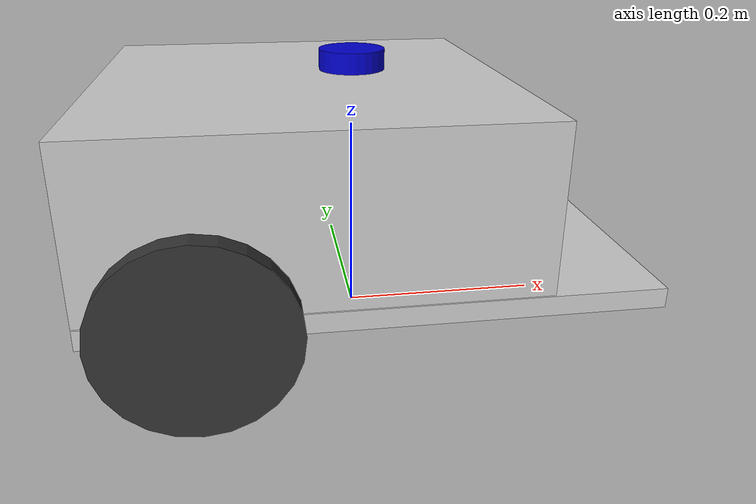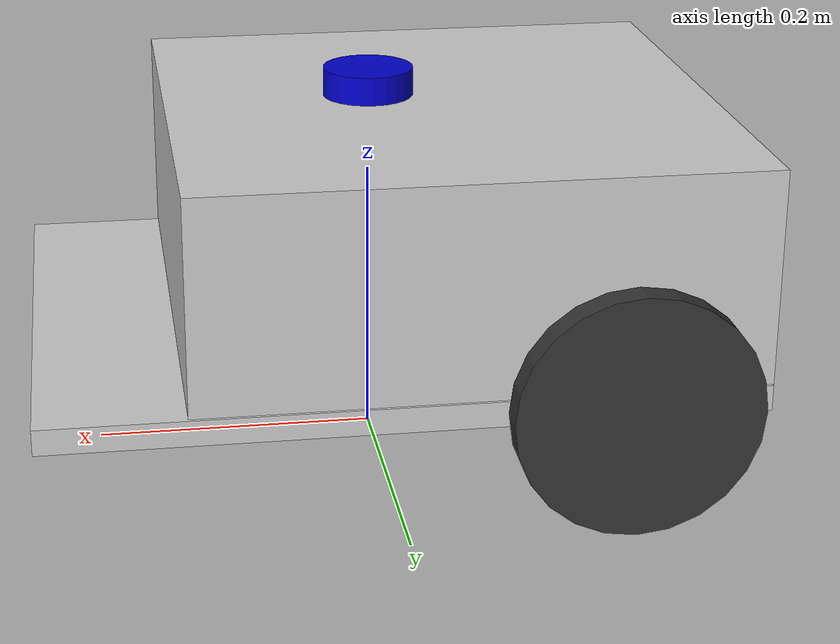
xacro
<?xml version="1.0"?>
<robot xmlns:xacro="http://www.ros.org/wiki/xacro" name="robaka_v2">

  <xacro:property name="base_width" value="0.393"/>
  <xacro:property name="base_len" value="0.490"/>
  <xacro:property name="base_height" value="0.018"/>
  <xacro:property name="base_width_1" value="0.393"/>
  <xacro:property name="base_len_1" value="0.390"/>
  <xacro:property name="base_height_1" value="0.150"/>
  <xacro:property name="wheel_radius" value="0.085"/>
  <xacro:property name="base_wheel_gap" value="0.01"/>
  <xacro:property name="wheel_separation" value="0.307"/>
  <xacro:property name="wheel_joint_offset" value="-0.150"/>
  <xacro:property name="caster_wheel_radius" value="0.0475"/>
  <xacro:property name="caster_wheel_joint_offset" value="0.1300"/>

  <xacro:include filename="$(find robaka)/urdf/robaka_v2_gazebo_plugins.xacro"/>

  <material name="blue">
    <color rgba="0 0 0.8 1"/>
  </material>
  <material name="black">
    <color rgba="0 0 0 1"/>
  </material>
  <material name="darkgray">
    <color rgba="0.2 0.2 0.2 1"/>
  </material>
  <material name="lightgray">
    <color rgba="0.8 0.8 0.8 1"/>
  </material>
  <material name="white">
    <color rgba="1 1 1 1"/>
  </material>
  <material name="red">
    <color rgba="0.8 0.0 0.0 1.0"/>
  </material>

  <!-- Import Rviz colors -->

  <xacro:macro name="box_inertia" params="m w h d">
    <inertial>
      <mass value="${m}"/>
      <inertia ixx="${m / 12.0 * (d*d + h*h)}" ixy="0.0" ixz="0.0" iyy="${m / 12.0 * (w*w + h*h)}" iyz="0.0" izz="${m / 12.0 * (w*w + d*d)}"/>
    </inertial>
  </xacro:macro>

  <link name="dummy"/>
  <link name="base_footprint">
    <xacro:box_inertia m="8" w="0.001" h="0.001" d="0.001"/>
    <visual>
      <origin xyz="0 0 0" rpy="0 0 0" />
      <material name="white"/>
        <geometry>
            <box size="0.001 0.001 0.001" />
        </geometry>
    </visual>
  </link>
  <joint name="dummy_joint" type="fixed">
     <parent link="dummy"/>
     <child link="base_footprint"/>
  </joint>

  <link name="base_link">
    <xacro:box_inertia m="1" w="${base_len}" h="${base_width}" d="0.01"/>
    <visual>
      <material name="lightgray"/>
      <geometry>
        <box size="${base_len} ${base_width} ${base_height}"/>
      </geometry>
    </visual>
    <collision>
      <geometry>
        <box size="${base_len} ${base_width} ${base_height}"/>
      </geometry>
    </collision>
  </link>

  <joint name="base_link_joint" type="fixed">
    <origin xyz="0 0 ${wheel_radius + 0.005}" rpy="0 0 0" />
    <parent link="base_footprint"/>
    <child link="base_link" />
  </joint>

  <link name="base_link_1">
    <xacro:box_inertia m="1" w="${base_len_1}" h="${base_width_1}" d="0.01"/>
    <visual>
      <material name="lightgray"/>
      <geometry>
        <box size="${base_len_1} ${base_width_1} ${base_height_1}"/>
      </geometry>
    </visual>
    <collision>
      <geometry>
        <box size="${base_len_1} ${base_width_1} ${base_height_1}"/>
      </geometry>
    </collision>
  </link>

  <joint name="base_link_joint_1" type="fixed">
    <origin xyz="${-(base_len-base_len_1)/2} 0 ${wheel_radius}" rpy="0 0 0" />
    <parent link="base_link"/>
    <child link="base_link_1" />
  </joint>

  <xacro:macro name="cylinder_inertia" params="m r h">
    <inertial>
      <mass value="${m}"/>
      <inertia ixx="${m*(3*r*r+h*h)/12}" ixy = "0" ixz = "0" iyy="${m*(3*r*r+h*h)/12}" iyz = "0" izz="${m*r*r/2}"/>
    </inertial>
  </xacro:macro>

  <xacro:macro name="wheel" params="prefix reflect">
    <link name="${prefix}_wheel">
      <visual>
	<material name="darkgray"/>
        <origin xyz="0 0 0" rpy="${pi/2} 0 0"/>
        <geometry>
          <cylinder radius="${wheel_radius}" length="0.02"/>
        </geometry>
      </visual>
      <collision>
        <origin xyz="0 0 0" rpy="${pi/2} 0 0"/>0
        <geometry>
          <cylinder radius="${wheel_radius}" length="0.02"/>
        </geometry>
      </collision>
      <xacro:cylinder_inertia m="10" r="${wheel_radius}" h="0.02"/>
    </link>

    <joint name="${prefix}_wheel_joint" type="continuous">
      <axis xyz="0 1 0" rpy="0 0 0" />
      <parent link="base_link"/>
      <child link="${prefix}_wheel"/>
      <origin xyz="${wheel_joint_offset} ${((base_width/2)+base_wheel_gap)*reflect} 0" rpy="0 0 0"/>
    </joint>
  </xacro:macro>

  <xacro:wheel prefix="left" reflect="1"/>
  <xacro:wheel prefix="right" reflect="-1"/>

  <xacro:macro name="sphere_inertia" params="m r">
    <inertial>
      <mass value="${m}"/>
      <inertia ixx="${2.0*m*(r*r)/5.0}" ixy="0.0" ixz="0.0" iyy="${2.0*m*(r*r)/5.0}" iyz="0.0" izz="${2.0*m*(r*r)/5.0}"/>
    </inertial>
  </xacro:macro>

   <link name="caster_wheel">
     <visual>
       <material name="darkgray"/>
      <origin xyz="0 0 0" rpy="0 0 0"/>
      <geometry>
        <sphere radius="${caster_wheel_radius}"/>
      </geometry>
    </visual>
    <collision>
      <origin xyz="0 0 0" rpy="0 0 0"/>
      <geometry>
        <sphere radius="${caster_wheel_radius}"/>
      </geometry>
    </collision>
    <xacro:sphere_inertia m="5" r="${caster_wheel_radius}"/>
  </link>

  <joint name="caster_wheel_joint" type="continuous">
    <axis xyz="0 1 0" rpy="0 0 0" />
    <parent link="base_link"/>
    <child link="caster_wheel"/>
    <origin xyz="${caster_wheel_joint_offset} 0 -${caster_wheel_radius-0.006}" rpy="0 0 0"/>
  </joint>

  <joint name="lidar_joint" type="fixed">
    <parent link="base_link" />
    <child link="lidar" />
    <origin xyz="0.0 0.0 ${0.018+0.153+0.004}" rpy="0 0 3.14159" />
  </joint>

  <link name="lidar">
    <visual>
      <material name="blue" />
      <origin xyz="0 0 0" rpy="0 0 0"/>
      <geometry>
        <cylinder radius="0.032" length="0.02"/>
      </geometry>
    </visual>
  </link>

  <joint name="camera_joint" type="fixed">
    <origin xyz="0.185 0 ${0.025}" rpy="0 0 3.14159" />
    <parent link="base_link" />
    <child link="camera_link" />
  </joint>
  <link name="camera_link" type="fixed">
  </link>

</robot>
